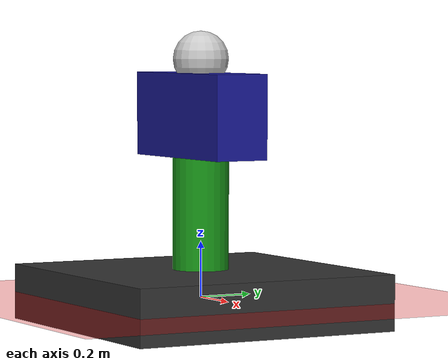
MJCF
<mujoco model="Lasercom_Gimbal_CPA_Mechanics">
    <compiler angle="radian" inertiafromgeom="true" />

    <default>
        <geom type="cylinder" material="default_mat" condim="3" solimp="0.9 0.95 0.001" solref="0.02 1"/>

        <joint damping="5.0" stiffness="0.0" />
    </default>

    <asset>
        <material name="default_mat" specular="0.5" shininess="0.25" rgba=".5 .5 .5 1"/>
        <material name="base_mat" specular="0.1" shininess="0.1" rgba=".2 .2 .2 1"/>
        <material name="az_mat" specular="0.6" shininess="0.3" rgba=".1 .6 .1 1"/>
        <material name="el_mat" specular="0.6" shininess="0.3" rgba=".1 .1 .6 1"/>
    </asset>

    <worldbody>
        <geom name="ground" type="plane" size="0 0 1" rgba=".9 0 0 1" />

        <body name="base_mount" pos="0 0 0">
            <geom name="base_geom" type="box" size="0.5 0.5 0.1" material="base_mat" />
            <body name="az_stage" pos="0 0 0.1">
                <joint name="az_joint" type="hinge" axis="0 0 1"
                       range="-3.14159 3.14159" stiffness="1000.0" damping="10.0" />

                <geom name="az_geom" type="cylinder" size="0.1 0.2" pos="0 0 0.2" material="az_mat" mass="50.0"/>

                <body name="el_stage" pos="0 0 0.4">
                    <joint name="el_joint" type="hinge" axis="0 1 0"
                           range="0 1.5708" stiffness="1500.0" damping="15.0" /> <geom name="el_geom" type="box" size="0.3 0.1 0.15" pos="0 0 0.15" material="el_mat" mass="30.0" />

                    <body name="payload_head" pos="0 0 0.35">
                        <inertial pos="0 0 0" mass="10.0" diaginertia="0.1 0.1 0.1" />
                        <geom name="payload_geom" type="sphere" size="0.1" material="default_mat" rgba=".8 .8 .8 1" />
                    </body>
                </body>
            </body>
        </body>
    </worldbody>

    <actuator>
        </actuator>

    <sensor>
        </sensor>

    <tendon>
        <spatial name="az_compliance_tendon" limited="false">
             <site site="az_geom" />
             <site site="base_geom" />
             <geom geom="az_geom" />
        </spatial>

        </tendon>

</mujoco>
